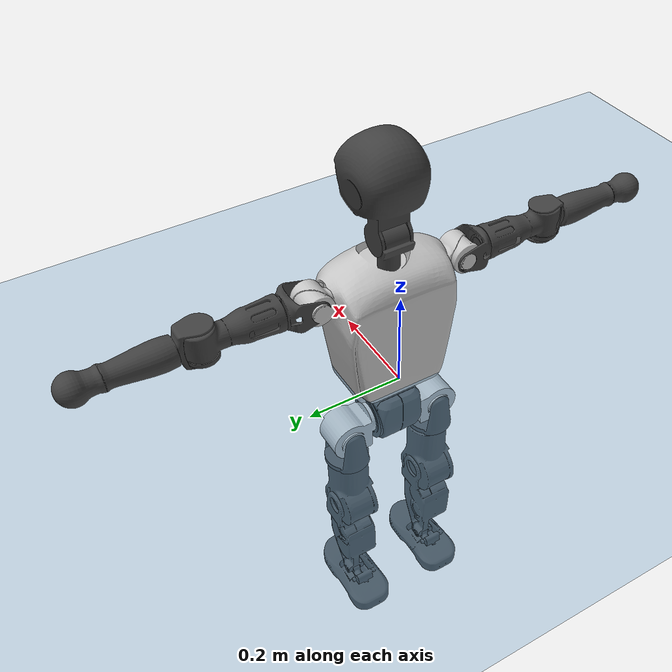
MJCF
<mujoco model="T1">
  <compiler angle="radian" assetdir="assets" balanceinertia="true" inertiafromgeom="false"/>

  <option timestep="0.005" density="1.2" viscosity="2e-05"/>

  <size nkey="1"/>

  <visual>
    <quality shadowsize="8192"/>
    <map shadowclip="0.5"/>
  </visual>

  <default>
    <default class="/">
      <joint armature="0.01" damping="0.01" frictionloss="0.1"/>
      <geom contype="0" conaffinity="0" group="1" solref="-1000 -80"/>
      <site size="0.01 0.005 0.005" group="5"/>
      <general forcelimited="true" biastype="affine" gainprm="25" biasprm="0 -25 -0.6"/>
      <default class="t1">
        <geom rgba="0.25 0.25 0.25 1"/>
        <default class="visual">
          <geom type="mesh" group="2"/>
        </default>
        <default class="collision">
          <geom group="3"/>
        </default>
        <default class="foot">
          <geom size="0.1115 0.05 0.015" type="box" condim="6" group="4" priority="1" solimp="0.015 1 0.015"/>
        </default>
        <default class="reward_collision_sphere">
          <geom group="5" rgba="1 0 0 1"/>
        </default>
      </default>
    </default>
  </default>

  <asset>
    <texture type="skybox" colorspace="auto" name="//unnamed_texture_0" builtin="gradient" rgb1="0.95 0.95 0.95" rgb2="0.95 0.95 0.95" width="100" height="600"/>
    <texture type="2d" colorspace="auto" name="texplane" builtin="checker" rgb1="0.345 0.575 0.748" rgb2="0.345 0.575 0.748" markrgb="1 1 1" width="512" height="512"/>
    <material name="MatPlane" class="/" texture="texplane" texuniform="true" texrepeat="2 2" specular="0.9"/>
    <mesh name="Trunk" class="/" file="Trunk.stl"/>
    <mesh name="H1" class="/" file="H1.stl"/>
    <mesh name="H2" class="/" file="H2.stl"/>
    <mesh name="AL1" class="/" file="AL1.stl"/>
    <mesh name="AL2" class="/" file="AL2.stl"/>
    <mesh name="AL3" class="/" file="AL3.stl"/>
    <mesh name="left_hand_link" class="/" file="left_hand_link.stl"/>
    <mesh name="AR1" class="/" file="AR1.stl"/>
    <mesh name="AR2" class="/" file="AR2.stl"/>
    <mesh name="AR3" class="/" file="AR3.stl"/>
    <mesh name="right_hand_link" class="/" file="right_hand_link.stl"/>
    <mesh name="Waist" class="/" file="Waist.stl"/>
    <mesh name="Hip_Pitch_Left" class="/" file="Hip_Pitch_Left.stl"/>
    <mesh name="Hip_Roll_Left" class="/" file="Hip_Roll_Left.stl"/>
    <mesh name="Hip_Yaw_Left" class="/" file="Hip_Yaw_Left.stl"/>
    <mesh name="Shank_Left" class="/" file="Shank_Left.stl"/>
    <mesh name="Ankle_Cross_Left" class="/" file="Ankle_Cross_Left.stl"/>
    <mesh name="left_foot_link" class="/" file="left_foot_link.stl"/>
    <mesh name="Hip_Pitch_Right" class="/" file="Hip_Pitch_Right.stl"/>
    <mesh name="Hip_Roll_Right" class="/" file="Hip_Roll_Right.stl"/>
    <mesh name="Hip_Yaw_Right" class="/" file="Hip_Yaw_Right.stl"/>
    <mesh name="Shank_Right" class="/" file="Shank_Right.stl"/>
    <mesh name="Ankle_Cross_Right" class="/" file="Ankle_Cross_Right.stl"/>
    <mesh name="right_foot_link" class="/" file="right_foot_link.stl"/>
  </asset>

  <worldbody>
    <geom name="floor" class="/" size="100 100 0.125" type="plane" group="0" material="MatPlane"/>
    <light name="toplight_shadow" class="/" pos="0 0 5" dir="0.0990148 0.0990148 -0.990148" type="directional" ambient="0.04 0.04 0.04" diffuse="0.55 0.55 0.55" specular="0.12 0.12 0.12"/>
    <light name="toplight_fill" class="/" pos="0 0 5" dir="0.0990148 0.0990148 -0.990148" type="directional" castshadow="false" ambient="0.04 0.04 0.04" diffuse="0.3 0.3 0.3" specular="0.08 0.08 0.08"/>
    <body name="trunk" childclass="t1" pos="0.00283212 0.000527517 0.000289896" quat="1 -1.48083e-05 6.77785e-06 -4.19012e-06">
      <inertial pos="0.035975 -0.00105765 0.106099" quat="0.999914 0.00827164 -0.0100375 -0.0017146" mass="8.57269" diaginertia="0.0114289 0.0724045 0.0653842"/>
      <joint name="//unnamed_joint_0" type="free" armature="0" damping="0" frictionloss="0"/>
      <geom name="//unnamed_geom_1" class="visual" rgba="0.76 0.76 0.76 1" mesh="Trunk"/>
      <geom name="//unnamed_geom_2" class="collision" size="0.066968 0.0892907 0.133936" pos="0.0393643 0 0.124095" type="box"/>
      <geom name="//unnamed_geom_3" class="reward_collision_sphere" size="0.102684" pos="0.0393643 0 0.103413"/>
      <geom name="//unnamed_geom_4" class="reward_collision_sphere" size="0.0133936" pos="0.0393643 0.0840242 0"/>
      <geom name="//unnamed_geom_5" class="reward_collision_sphere" size="0.0133936" pos="0.0393643 -0.0840242 0"/>
      <geom name="//unnamed_geom_6" class="reward_collision_sphere" size="0.0133936" pos="0.0393643 0.105772 0.186143"/>
      <geom name="//unnamed_geom_7" class="reward_collision_sphere" size="0.0133936" pos="0.0393643 -0.105772 0.186143"/>
      <site name="imu" pos="-0.0076944 -0.0117059 0.01365" size="0.00892907"/>
      <camera name="track" pos="0 -1.97704 0" quat="0.707107 0.707107 0 0" mode="trackcom"/>
      <camera name="ego_camera" pos="0.0800408 0 0.434334" quat="-0.5 -0.5 0.5 0.5"/>
      <body name="H1" pos="0.0401489 -0.00153071 0.250396" quat="1 4.39043e-05 -0.000164898 0.000531473">
        <inertial pos="-0.00360766 -0.00113483 0.0567331" quat="0.768228 -0.0107091 0.00126286 0.640085" mass="0.327501" diaginertia="2.91951e-05 0.000209084 0.000178358"/>
        <joint name="AAHead_yaw" pos="0 0 0" axis="0.0055065 0.00725487 0.999959" stiffness="0.00159831" range="-1.5545 1.60233" armature="0.00972722" damping="0.0114423" frictionloss="0.101572"/>
        <geom name="//unnamed_geom_8" class="visual" mesh="H1"/>
        <body name="H2" pos="0.000602619 0.000274481 0.064246" quat="0.999999 -0.000561884 0.000533613 0.000980364">
          <inertial pos="0.00406859 9.94401e-05 0.102187" quat="0.988313 0.106076 -0.0763868 -0.0784265" mass="0.455977" diaginertia="0.000237046 0.00178618 0.00207464"/>
          <joint name="Head_pitch" pos="0 0 0" axis="-0.000706314 -0.999999 0.000878209" range="-1.2011 0.348477" armature="0.0100728" damping="0.00586825" frictionloss="0.0895536"/>
          <geom name="//unnamed_geom_9" class="visual" mesh="H2"/>
          <geom name="//unnamed_geom_10" class="collision" size="0.0714326" pos="0.00656072 0 0.113754"/>
          <geom name="//unnamed_geom_11" class="reward_collision_sphere" size="0.0803616" pos="0.0131214 0 0.103413"/>
        </body>
      </body>
      <body name="AL1" pos="0.0415995 0.107047 0.229657" quat="1 0.000278127 0.000385054 -2.87025e-05">
        <inertial pos="-0.00148055 0.0459957 -0.00256032" quat="0.505294 0.495653 -0.500728 0.498274" mass="0.403143" diaginertia="0.000177954 0.00130684 0.000360406"/>
        <joint name="Left_Shoulder_Pitch" pos="0 0 0" axis="0.00694791 0.999902 0.0121283" stiffness="0.0126247" range="-3.25706 1.2297" armature="0.010115" damping="0.0148208" frictionloss="0.0767279"/>
        <geom name="//unnamed_geom_12" class="visual" rgba="0.76 0.76 0.76 1" mesh="AL1"/>
        <body name="AL2" pos="0.00102937 0.0491294 0.00313841" quat="0.999999 -0.000993618 0.000740943 -0.000127869">
          <inertial pos="0.0015056 0.0365273 0.00262312" quat="0.488076 0.51165 -0.487948 0.511764" mass="0.112541" diaginertia="5.13764e-05 0.000336869 0.00020576"/>
          <joint name="Left_Shoulder_Roll" pos="0 0 0" axis="-0.999975 -0.00453858 0.00537295" range="-1.51586 1.69629" armature="0.00883271" damping="0.0113234" frictionloss="0.0928624"/>
          <geom name="//unnamed_geom_13" class="visual" mesh="AL2"/>
          <body name="AL3" pos="0.00186643 0.0607243 0.00100021" quat="0.999999 0.000360864 0.00118352 0.000965205">
            <inertial pos="-0.001189 0.0849325 0.00247887" quat="0.713759 0.700355 0.00633617 0.003141" mass="0.738754" diaginertia="0.00163453 0.0122461 0.000744996"/>
            <joint name="Left_Elbow_Pitch" pos="0 0 0" axis="-0.00127344 -0.999993 -0.00346679" range="-2.25287 2.31516" armature="0.00790888" damping="0" frictionloss="0.0914335"/>
            <geom name="//unnamed_geom_14" class="visual" mesh="AL3"/>
            <geom name="//unnamed_geom_15" class="collision" size="0.0267872 0.066968" pos="0 0.049426 0" quat="0.707105 0.707108 0 0" type="cylinder"/>
            <geom name="//unnamed_geom_16" class="reward_collision_sphere" size="0.0321447"/>
            <body name="left_hand_link" pos="0.00309511 0.145334 0.00157723" quat="0.999999 -0.000137397 0.00129451 0.000245648">
              <inertial pos="0.000544259 0.106101 0.00087461" quat="0.704634 0.709516 0.00669417 -0.00565549" mass="0.226976" diaginertia="0.00101341 0.00777082 0.000250888"/>
              <joint name="Left_Elbow_Yaw" pos="0 0 0" axis="0.00682532 -0.00791295 0.999945" stiffness="0.00742528" range="-2.38722 -0.0569603" armature="0.010195" damping="0.025737" frictionloss="0.100706"/>
              <geom name="//unnamed_geom_17" class="visual" mesh="left_hand_link"/>
              <geom name="//unnamed_geom_18" class="collision" size="0.0267872 0.0781294" pos="0 0.128508 0" quat="0.707105 0.707108 0 0" type="cylinder"/>
              <geom name="//unnamed_geom_19" class="reward_collision_sphere" size="0.0446454"/>
              <geom name="//unnamed_geom_20" class="reward_collision_sphere" size="0.0312517" pos="0 0.108737 0"/>
              <geom name="//unnamed_geom_21" class="reward_collision_sphere" size="0.0312517" pos="0 0.212532 0"/>
            </body>
          </body>
        </body>
      </body>
      <body name="AR1" pos="0.0358208 -0.106445 0.225381" quat="0.999998 -8.56488e-05 0.00181909 0.000368047">
        <inertial pos="0.00171462 -0.0432999 -0.000360232" quat="0.50427 0.495795 -0.504364 0.495495" mass="0.379848" diaginertia="0.000161466 0.00120652 0.000348005"/>
        <joint name="Right_Shoulder_Pitch" pos="0 0 0" axis="0.00251131 -0.999994 0.00232451" stiffness="0.0131299" range="-1.24746 3.3393" armature="0.0100528" damping="0.00404383" frictionloss="0.0767479"/>
        <geom name="//unnamed_geom_22" class="visual" rgba="0.76 0.76 0.76 1" mesh="AR1"/>
        <body name="AR2" pos="-0.00136969 -0.0428153 -0.00201164" quat="1 -0.000178303 -0.0003319 -0.000117183">
          <inertial pos="-0.000442543 -0.0349223 -0.00133247" quat="0.514039 0.487163 -0.508032 0.490245" mass="0.117727" diaginertia="5.05184e-05 0.000332066 0.000222443"/>
          <joint name="Right_Shoulder_Roll" pos="0 0 0" axis="-0.999734 -0.012027 0.0196986" range="-1.71981 1.58048" armature="0.00991572" damping="0.0149403" frictionloss="0.0933545"/>
          <geom name="//unnamed_geom_23" class="visual" mesh="AR2"/>
          <body name="AR3" pos="-0.000204271 -0.0572576 0.00126809" quat="1 0.000292065 -0.000373168 2.57631e-06">
            <inertial pos="-0.00190703 -0.0826162 0.000355912" quat="0.710253 0.703822 0.0130617 -0.00195099" mass="0.732301" diaginertia="0.00157392 0.0121273 0.000752537"/>
            <joint name="Right_Elbow_Pitch" pos="0 0 0" axis="-0.0127605 0.999915 -0.00261071" range="-2.27553 2.21045" armature="0.00875426" damping="0.0023037" frictionloss="0.0820015"/>
            <geom name="//unnamed_geom_24" class="visual" mesh="AR3"/>
            <geom name="//unnamed_geom_25" class="collision" size="0.0267872 0.066968" pos="0 -0.049426 0" quat="0.707105 0.707108 0 0" type="cylinder"/>
            <geom name="//unnamed_geom_26" class="reward_collision_sphere" size="0.0321447"/>
            <body name="right_hand_link" pos="0.00189317 -0.142469 -0.00046304" quat="1 -0.000279334 -0.0001309 0.000242934">
              <inertial pos="-0.00163506 -0.10822 0.00289073" quat="0.705944 0.708267 -0.0005554 0.000165324" mass="0.234872" diaginertia="0.00100461 0.00753132 0.000248055"/>
              <joint name="Right_Elbow_Yaw" pos="0 0 0" axis="0.00329232 -0.00142745 0.999994" stiffness="0.0110515" range="0.0580522 2.40211" armature="0.00903579" damping="0" frictionloss="0.080767"/>
              <geom name="//unnamed_geom_27" class="visual" mesh="right_hand_link"/>
              <geom name="//unnamed_geom_28" class="collision" size="0.0267872 0.0781294" pos="0 -0.128508 0" quat="0.707105 0.707108 0 0" type="cylinder"/>
              <geom name="//unnamed_geom_29" class="reward_collision_sphere" size="0.0446454"/>
              <geom name="//unnamed_geom_30" class="reward_collision_sphere" size="0.0312517" pos="0 -0.108737 0"/>
              <geom name="//unnamed_geom_31" class="reward_collision_sphere" size="0.0312517" pos="0 -0.212532 0"/>
            </body>
          </body>
        </body>
      </body>
      <body name="Waist" pos="0.0400871 -0.00114863 -0.117888" quat="1 -6.69803e-06 2.80839e-05 -9.29768e-07">
        <inertial pos="0.00171145 -0.000505531 0.00839873" quat="0.981792 -0.0030831 -0.189822 -0.00648897" mass="1.7829" diaginertia="0.000662197 0.0050581 0.00568799"/>
        <joint name="Waist" pos="0 0 0" axis="0.0146211 -0.00254271 0.99989" stiffness="0.00114414" range="-1.62527 1.51237" armature="0.00906674" damping="0.0196653" frictionloss="0.0806585"/>
        <geom name="//unnamed_geom_32" class="visual" mesh="Waist"/>
        <body name="Hip_Pitch_Left" pos="-0.00103326 0.104817 -0.00184941" quat="1 -0.00032512 -0.000263187 -0.000512327">
          <inertial pos="0.0013514 -0.00997972 -0.0172196" quat="0.975063 0.22041 0.0230391 0.0118649" mass="0.740537" diaginertia="0.000214476 0.00143985 0.00153435"/>
          <joint name="Left_Hip_Pitch" pos="0 0 0" axis="0.00654025 0.999894 0.0130265" stiffness="0.0126701" range="-1.83379 1.56651" armature="0.0100375" damping="0.0201091" frictionloss="0.090102"/>
          <geom name="//unnamed_geom_33" class="visual" rgba="0.76 0.76 0.76 1" mesh="Hip_Pitch_Left"/>
          <body name="Hip_Roll_Left" pos="0.00192871 -0.00135565 -0.021773" quat="0.999999 -0.000474038 0.000855108 -0.000486324">
            <inertial pos="0.0041698 -0.00119131 -0.0557206" quat="0.704637 -0.00437452 -0.00760847 0.709514" mass="0.261366" diaginertia="0.000206237 0.0014132 0.000597954"/>
            <joint name="Left_Hip_Roll" pos="0 0 0" axis="-0.999937 0.0052832 -0.00988346" stiffness="0.00762364" range="-1.53657 0.22279" armature="0.00765713" damping="0" frictionloss="0.0793975"/>
            <geom name="//unnamed_geom_34" class="visual" mesh="Hip_Roll_Left"/>
            <geom name="//unnamed_geom_35" class="reward_collision_sphere" size="0.0491099"/>
            <body name="Hip_Yaw_Left" pos="0.00334851 -0.00337723 -0.0825055" quat="0.999999 0.000182045 0.000493806 -0.000866595">
              <inertial pos="-0.00590911 -0.00208078 -0.0940904" quat="0.698053 -0.038026 -0.0311159 0.714358" mass="1.56054" diaginertia="0.00319581 0.0237152 0.00303137"/>
              <joint name="Left_Hip_Yaw" pos="0 0 0" axis="0.00832356 0.00423625 -0.999956" range="-0.98014 1.05111" armature="0.00908487" damping="0.0081025" frictionloss="0.100185"/>
              <geom name="//unnamed_geom_36" class="visual" mesh="Hip_Yaw_Left"/>
              <geom name="//unnamed_geom_37" class="collision" size="0.0446454 0.0714326" type="cylinder"/>
              <body name="Shank_Left" pos="-0.00833801 0.00182423 -0.141281" quat="1 9.99218e-09 2.4332e-08 6.00434e-09">
                <inertial pos="-0.0051494 0.00163742 -0.127025" quat="0.997347 0.00534896 -0.0273935 0.0672242" mass="1.17834" diaginertia="0.00417226 0.03259 0.00225677"/>
                <joint name="Left_Knee_Pitch" pos="0 0 0" axis="-0.0109408 0.999931 -0.00423766" range="-0.00258753 2.39488" armature="0.00769165" damping="0.0148441" frictionloss="0.0959819"/>
                <geom name="//unnamed_geom_38" class="visual" mesh="Shank_Left"/>
                <geom name="//unnamed_geom_39" class="collision" size="0.0446454 0.066968" pos="0 0 -0.124095" type="cylinder"/>
                <geom name="//unnamed_geom_40" class="reward_collision_sphere" size="0.058039"/>
                <body name="Ankle_Cross_Left" pos="-0.0026586 -0.00177634 -0.287804" quat="1 -0.000270126 4.54057e-05 0.000328515">
                  <inertial pos="-0.00187867 0.000402148 -0.00742365" quat="0.444741 0.553396 0.549667 0.440255" mass="0.0536402" diaginertia="3.76223e-06 2.51746e-05 1.39285e-05"/>
                  <joint name="Left_Ankle_Pitch" pos="0 0 0" axis="0.0115384 0.999929 0.00293802" range="-0.874088 0.293372" armature="0.00949481" damping="0.000482933" frictionloss="0.0781694"/>
                  <geom name="//unnamed_geom_41" class="visual" mesh="Ankle_Cross_Left"/>
                  <body name="left_foot_link" pos="0.00104073 -0.0018931 -0.0153094" quat="1 -3.94295e-05 5.75689e-05 -0.000121941">
                    <inertial pos="-0.00149715 0.00273771 -0.00952471" quat="0.000200633 0.619087 0.00111079 0.785322" mass="0.481513" diaginertia="0.000327587 0.00224996 0.00248532"/>
                    <joint name="Left_Ankle_Roll" pos="0 0 0" axis="-1 0.00026869 6.58699e-05" range="-0.382989 0.38933" armature="0.00894838" damping="0.0096184" frictionloss="0.0911262"/>
                    <geom name="//unnamed_geom_42" class="visual" mesh="left_foot_link"/>
                    <geom name="left_foot" class="foot" size="0.0977754 0.0453578 0.0122694" pos="0.00656072 0 -0.0155119"/>
                    <geom name="//unnamed_geom_44" class="reward_collision_sphere" size="0.0464312" pos="0.00656072 0 -0.0155119"/>
                    <geom name="//unnamed_geom_45" class="reward_collision_sphere" size="0.0267872" pos="0.0623268 -0.022736 -0.0155119"/>
                    <geom name="//unnamed_geom_46" class="reward_collision_sphere" size="0.0267872" pos="-0.045925 -0.022736 -0.0155119"/>
                    <site name="left_foot" class="foot" pos="0.00656072 0 -0.0155119" size="0.00892907"/>
                  </body>
                </body>
              </body>
            </body>
          </body>
        </body>
        <body name="Hip_Pitch_Right" pos="-0.00235469 -0.105309 -0.00272549" quat="1 -0.000264723 0.000231731 0.000903199">
          <inertial pos="0.000803953 0.0078388 -0.0209526" quat="0.974135 -0.22555 0.0135844 0.00191899" mass="0.719991" diaginertia="0.000215694 0.00141148 0.00152422"/>
          <joint name="Right_Hip_Pitch" pos="0 0 0" axis="0.00244849 -0.999939 0.0107469" range="-1.57983 1.82798" armature="0.00836893" damping="0.0201268" frictionloss="0.0818765"/>
          <geom name="//unnamed_geom_47" class="visual" rgba="0.76 0.76 0.76 1" mesh="Hip_Pitch_Right"/>
          <body name="Hip_Roll_Right" pos="0.00128331 -0.000289947 -0.0191379" quat="1 0.000329209 0.000461736 -7.67899e-05">
            <inertial pos="-0.000185864 -0.0031464 -0.0530385" quat="0.7042 -0.011661 -0.00459378 0.709891" mass="0.2648" diaginertia="0.000203946 0.00134808 0.000603243"/>
            <joint name="Right_Hip_Roll" pos="0 0 0" axis="-0.999972 0.00716173 -0.00227665" range="-0.193808 1.55456" armature="0.00752114" damping="0.00718072" frictionloss="0.090362"/>
            <geom name="//unnamed_geom_48" class="visual" mesh="Hip_Roll_Right"/>
            <geom name="//unnamed_geom_49" class="reward_collision_sphere" size="0.0491099"/>
            <body name="Hip_Yaw_Right" pos="0.000889485 0.00219121 -0.0872339" quat="1 0.000697447 -0.000165168 9.33492e-05">
              <inertial pos="-0.00167342 0.00134311 -0.095277" quat="0.71364 -0.0284399 -0.0353687 0.69904" mass="1.54611" diaginertia="0.003146 0.0231353 0.00299928"/>
              <joint name="Right_Hip_Yaw" pos="0 0 0" axis="-0.00152626 0.00121888 -0.999998" range="-1.03388 1.02661" armature="0.00900272" damping="0.00387695" frictionloss="0.0884197"/>
              <geom name="//unnamed_geom_50" class="visual" mesh="Hip_Yaw_Right"/>
              <geom name="//unnamed_geom_51" class="collision" size="0.0446454 0.0714326" type="cylinder"/>
              <body name="Shank_Right" pos="-0.00582786 -0.00131632 -0.136061" quat="1 0.000106759 8.17928e-06 4.32355e-05">
                <inertial pos="-0.00485121 -0.00011101 -0.129587" quat="0.998798 0.0044576 -0.0340549 -0.0349602" mass="1.31002" diaginertia="0.00413814 0.031789 0.00224465"/>
                <joint name="Right_Knee_Pitch" pos="0 0 0" axis="-0.0159852 -0.999872 0.00112432" range="-2.39703 -0.0134225" armature="0.00904254" damping="0.0173181" frictionloss="0.0781929"/>
                <geom name="//unnamed_geom_52" class="visual" mesh="Shank_Right"/>
                <geom name="//unnamed_geom_53" class="collision" size="0.0446454 0.066968" pos="0 0 -0.124095" type="cylinder"/>
                <geom name="//unnamed_geom_54" class="reward_collision_sphere" size="0.058039"/>
                <body name="Ankle_Cross_Right" pos="1.80675e-05 -0.000410778 -0.28831" quat="1 -0.000200473 0.000169095 -0.000300485">
                  <inertial pos="-0.00359122 -0.00243057 -0.00707139" quat="0.440957 0.546965 0.556735 0.443207" mass="0.0514873" diaginertia="3.5047e-06 2.32904e-05 1.32007e-05"/>
                  <joint name="Right_Ankle_Pitch" pos="0 0 0" axis="-0.00878144 -0.999925 -0.00855243" stiffness="0.000237127" range="-0.2954 0.870557" armature="0.0102215" damping="0.00436891" frictionloss="0.0924405"/>
                  <geom name="//unnamed_geom_55" class="visual" mesh="Ankle_Cross_Right"/>
                  <body name="right_foot_link" pos="0.00209811 -0.000691781 -0.0102757" quat="1 2.16299e-05 0.000101175 -1.98781e-05">
                    <inertial pos="-0.000721541 0.00167812 -0.00738989" quat="0.000353934 0.629299 0.00892682 0.777112" mass="0.485481" diaginertia="0.00033742 0.00230101 0.00261987"/>
                    <joint name="Right_Ankle_Roll" pos="0 0 0" axis="-0.999998 -0.00170812 -0.00103784" range="-0.423969 0.383026" armature="0.00891406" damping="0.0116898" frictionloss="0.076668"/>
                    <geom name="//unnamed_geom_56" class="visual" mesh="right_foot_link"/>
                    <geom name="right_foot" class="foot" size="0.114042 0.0473847 0.0146447" pos="0.00656072 0 -0.0155119"/>
                    <geom name="//unnamed_geom_58" class="reward_collision_sphere" size="0.0357163"/>
                    <geom name="//unnamed_geom_59" class="reward_collision_sphere" size="0.0267872" pos="0.00656072 0 -0.0155119"/>
                    <geom name="//unnamed_geom_60" class="reward_collision_sphere" size="0.0267872" pos="0.0623268 0.022736 -0.0155119"/>
                    <geom name="//unnamed_geom_61" class="reward_collision_sphere" size="0.0267872" pos="-0.045925 0.022736 -0.0155119"/>
                    <site name="right_foot" class="foot" pos="0.00656072 0 -0.0155119" size="0.00892907"/>
                  </body>
                </body>
              </body>
            </body>
          </body>
        </body>
      </body>
    </body>
  </worldbody>

  <contact>
    <pair class="/" geom1="floor" geom2="left_foot" name="//unnamed_contact_0"/>
    <pair class="/" geom1="floor" geom2="right_foot" name="//unnamed_contact_1"/>
  </contact>

  <actuator>
    <general name="AAHead_yaw" class="/" joint="AAHead_yaw" forcerange="-6.90606 6.90606" gainprm="24.0306" biasprm="0 -24.0306 -0.494176"/>
    <general name="Head_pitch" class="/" joint="Head_pitch" forcerange="-6.30548 6.30548" gainprm="24.0306" biasprm="0 -24.0306 -0.494176"/>
    <general name="Left_Shoulder_Pitch" class="/" joint="Left_Shoulder_Pitch" forcerange="-15.3704 15.3704" gainprm="24.0306" biasprm="0 -24.0306 -0.494176"/>
    <general name="Left_Shoulder_Roll" class="/" joint="Left_Shoulder_Roll" forcerange="-16.5936 16.5936" gainprm="24.0306" biasprm="0 -24.0306 -0.494176"/>
    <general name="Left_Elbow_Pitch" class="/" joint="Left_Elbow_Pitch" forcerange="-17.725 17.725" gainprm="24.0306" biasprm="0 -24.0306 -0.494176"/>
    <general name="Left_Elbow_Yaw" class="/" joint="Left_Elbow_Yaw" forcerange="-17.852 17.852" gainprm="24.0306" biasprm="0 -24.0306 -0.494176"/>
    <general name="Right_Shoulder_Pitch" class="/" joint="Right_Shoulder_Pitch" forcerange="-14.7101 14.7101" gainprm="24.0306" biasprm="0 -24.0306 -0.494176"/>
    <general name="Right_Shoulder_Roll" class="/" joint="Right_Shoulder_Roll" forcerange="-15.5987 15.5987" gainprm="24.0306" biasprm="0 -24.0306 -0.494176"/>
    <general name="Right_Elbow_Pitch" class="/" joint="Right_Elbow_Pitch" forcerange="-16.1936 16.1936" gainprm="24.0306" biasprm="0 -24.0306 -0.494176"/>
    <general name="Right_Elbow_Yaw" class="/" joint="Right_Elbow_Yaw" forcerange="-16.498 16.498" gainprm="24.0306" biasprm="0 -24.0306 -0.494176"/>
    <general name="Waist" class="/" joint="Waist" forcerange="-27.001 27.001" gainprm="24.0306" biasprm="0 -24.0306 -0.494176"/>
    <general name="Left_Hip_Pitch" class="/" joint="Left_Hip_Pitch" forcerange="-40.096 40.096" gainprm="24.0306" biasprm="0 -24.0306 -0.494176"/>
    <general name="Left_Hip_Roll" class="/" joint="Left_Hip_Roll" forcerange="-26.8083 26.8083" gainprm="24.0306" biasprm="0 -24.0306 -0.494176"/>
    <general name="Left_Hip_Yaw" class="/" joint="Left_Hip_Yaw" forcerange="-24.1202 24.1202" gainprm="24.0306" biasprm="0 -24.0306 -0.494176"/>
    <general name="Left_Knee_Pitch" class="/" joint="Left_Knee_Pitch" forcerange="-58.3519 58.3519" gainprm="24.0306" biasprm="0 -24.0306 -0.494176"/>
    <general name="Left_Ankle_Pitch" class="/" joint="Left_Ankle_Pitch" forcerange="-16.0642 16.0642" gainprm="24.0306" biasprm="0 -24.0306 -0.494176"/>
    <general name="Left_Ankle_Roll" class="/" joint="Left_Ankle_Roll" forcerange="-13.865 13.865" gainprm="24.0306" biasprm="0 -24.0306 -0.494176"/>
    <general name="Right_Hip_Pitch" class="/" joint="Right_Hip_Pitch" forcerange="-41.7957 41.7957" gainprm="24.0306" biasprm="0 -24.0306 -0.494176"/>
    <general name="Right_Hip_Roll" class="/" joint="Right_Hip_Roll" forcerange="-26.964 26.964" gainprm="24.0306" biasprm="0 -24.0306 -0.494176"/>
    <general name="Right_Hip_Yaw" class="/" joint="Right_Hip_Yaw" forcerange="-25.0875 25.0875" gainprm="24.0306" biasprm="0 -24.0306 -0.494176"/>
    <general name="Right_Knee_Pitch" class="/" joint="Right_Knee_Pitch" forcerange="-48.3854 48.3854" gainprm="24.0306" biasprm="0 -24.0306 -0.494176"/>
    <general name="Right_Ankle_Pitch" class="/" joint="Right_Ankle_Pitch" forcerange="-16.4575 16.4575" gainprm="24.0306" biasprm="0 -24.0306 -0.494176"/>
    <general name="Right_Ankle_Roll" class="/" joint="Right_Ankle_Roll" forcerange="-14.2431 14.2431" gainprm="24.0306" biasprm="0 -24.0306 -0.494176"/>
  </actuator>

  <sensor>
    <gyro site="imu" name="imu_angular_velocity"/>
    <velocimeter site="imu" name="imu_linear_velocity"/>
    <framelinvel objtype="site" objname="left_foot" name="left_foot_global_linear_velocity"/>
    <framelinvel objtype="site" objname="right_foot" name="right_foot_global_linear_velocity"/>
  </sensor>

  <keyframe>
    <key name="home" qpos="0 0 0.6385 1 0 0 0 0 0 0 1.4 0 -0.4 0 -1.4 0 0.4 0 -0.4 0 0 0.8 -0.4 0 0.4 0 0 -0.8 0.4 0"/>
  </keyframe>
</mujoco>
